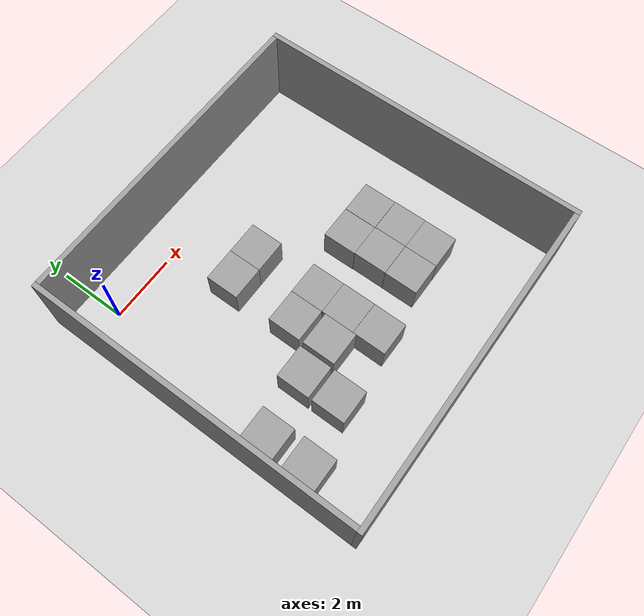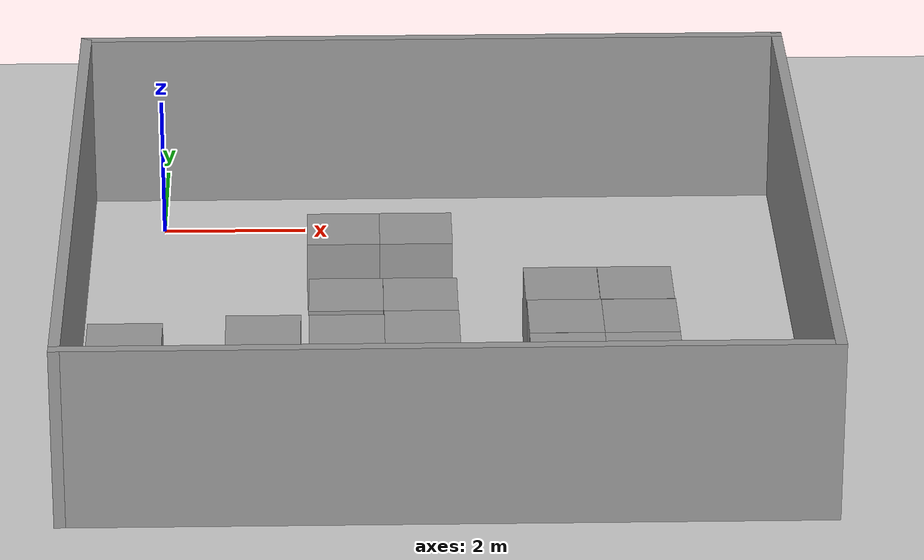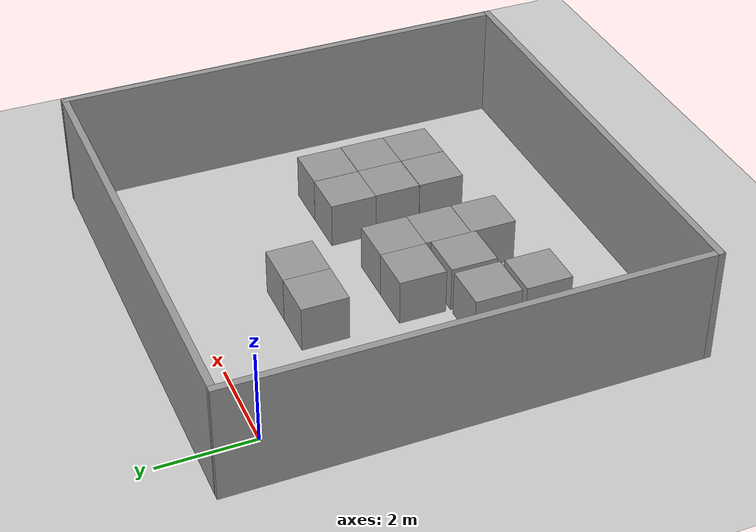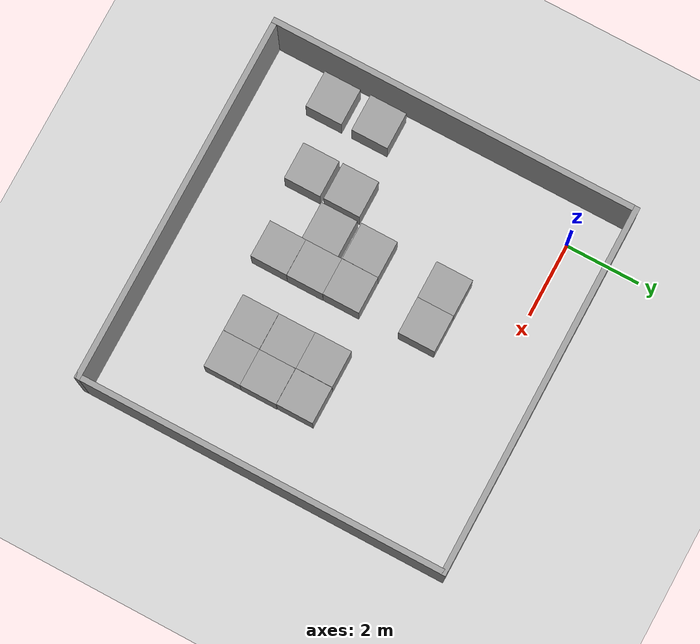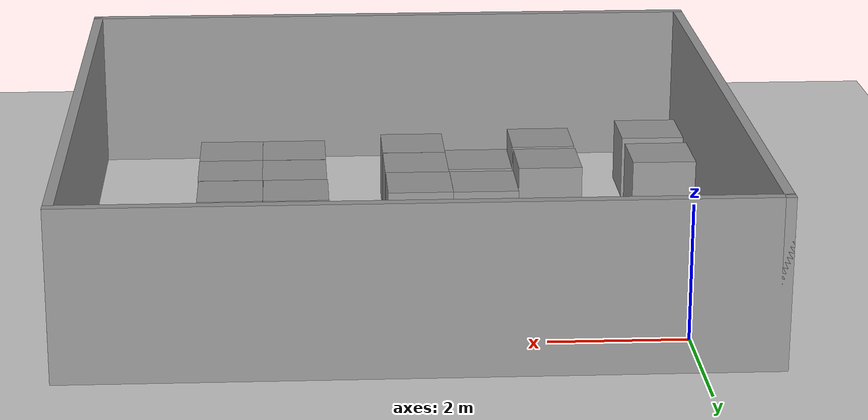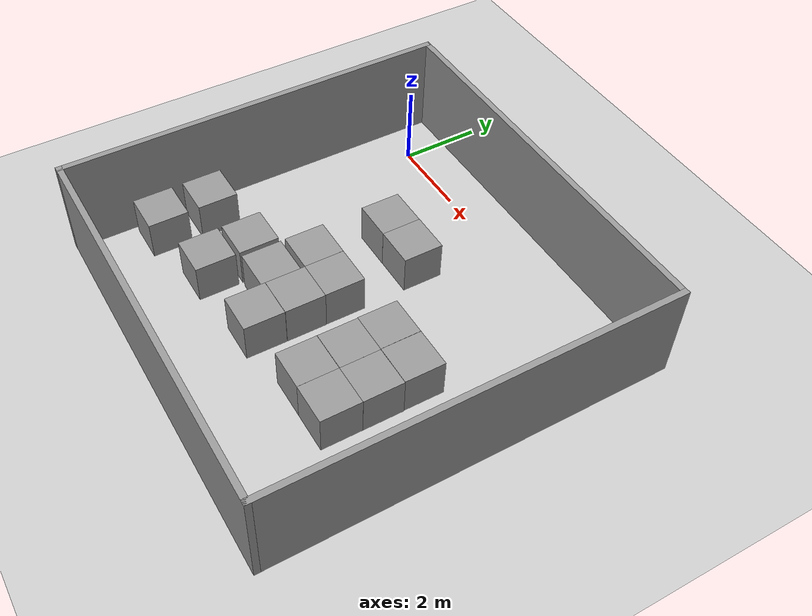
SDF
<sdf version="1.6">
 <world name="default">
  <light name="sun" type="directional">
   <pose>0 0 10 0 -0 0</pose>
   <diffuse>0.8 0.8 0.8 1</diffuse>
   <specular>0.2 0.2 0.2 1</specular>
   <attenuation>
    <range>1000</range>
    <constant>0.9</constant>
    <linear>0.01</linear>
    <quadratic>0.001</quadratic>
   </attenuation>
   <direction>-0.5 0.1 -0.9</direction>
  </light>
  <model name="ground_plane">
   <static>1</static>
   <link name="link">
    <collision name="collision">
     <geometry><plane><normal>0 0 1</normal><size>100 100</size></plane></geometry>
     <surface><friction><ode><mu>100</mu><mu2>50</mu2></ode></friction></surface>
    </collision>
    <visual name="visual">
     <cast_shadows>0</cast_shadows>
     <geometry><plane><normal>0 0 1</normal><size>100 100</size></plane></geometry>
     <material>
      <script><uri>file://media/materials/scripts/gazebo.material</uri><name>Gazebo/Grey</name></script>
     </material>
    </visual>
   </link>
  </model>
  <gravity>0 0 -9.8</gravity>
  <magnetic_field>6e-06 2.3e-05 -4.2e-05</magnetic_field>
  <atmosphere type="adiabatic"/>
  <physics name="default_physics" default="0" type="ode">
   <max_step_size>0.001</max_step_size>
   <real_time_factor>1</real_time_factor>
   <real_time_update_rate>1000</real_time_update_rate>
  </physics>
  <scene><ambient>0.4 0.4 0.4 1</ambient><background>0.7 0.7 0.7 1</background><shadows>1</shadows></scene>
  <audio><device>default</device></audio>
  <spherical_coordinates>
   <surface_model>EARTH_WGS84</surface_model>
   <latitude_deg>0</latitude_deg>
   <longitude_deg>0</longitude_deg>
   <elevation>0</elevation>
   <heading_deg>0</heading_deg>
  </spherical_coordinates>
  <model name="Untitled">
   <pose>3.83215 -3.80138 0 0 -0 0</pose>
   <link name="Wall_0">
    <collision name="Wall_0_Collision">
     <geometry><box><size>10 0.15 2.5</size></box></geometry>
     <pose>0 0 1.25 0 -0 0</pose>
    </collision>
    <visual name="Wall_0_Visual">
     <pose>0 0 1.25 0 -0 0</pose>
     <geometry><box><size>10 0.15 2.5</size></box></geometry>
     <material>
      <script><uri>file://media/materials/scripts/gazebo.material</uri><name>Gazebo/Grey</name></script>
      <ambient>1 1 1 1</ambient>
     </material>
     <meta><layer>0</layer></meta>
    </visual>
    <pose>-4.925 0 0 0 -0 1.5708</pose>
   </link>
   <link name="Wall_1">
    <collision name="Wall_1_Collision">
     <geometry><box><size>10 0.15 2.5</size></box></geometry>
     <pose>0 0 1.25 0 -0 0</pose>
    </collision>
    <visual name="Wall_1_Visual">
     <pose>0 0 1.25 0 -0 0</pose>
     <geometry><box><size>10 0.15 2.5</size></box></geometry>
     <material>
      <script><uri>file://media/materials/scripts/gazebo.material</uri><name>Gazebo/Grey</name></script>
      <ambient>1 1 1 1</ambient>
     </material>
     <meta><layer>0</layer></meta>
    </visual>
    <pose>0 4.925 0 0 -0 0</pose>
   </link>
   <link name="Wall_2">
    <collision name="Wall_2_Collision">
     <geometry><box><size>10 0.15 2.5</size></box></geometry>
     <pose>0 0 1.25 0 -0 0</pose>
    </collision>
    <visual name="Wall_2_Visual">
     <pose>0 0 1.25 0 -0 0</pose>
     <geometry><box><size>10 0.15 2.5</size></box></geometry>
     <material>
      <script><uri>file://media/materials/scripts/gazebo.material</uri><name>Gazebo/Grey</name></script>
      <ambient>1 1 1 1</ambient>
     </material>
     <meta><layer>0</layer></meta>
    </visual>
    <pose>4.925 0 0 0 -0 -1.5708</pose>
   </link>
   <link name="Wall_3">
    <collision name="Wall_3_Collision">
     <geometry><box><size>10 0.15 2.5</size></box></geometry>
     <pose>0 0 1.25 0 -0 0</pose>
    </collision>
    <visual name="Wall_3_Visual">
     <pose>0 0 1.25 0 -0 0</pose>
     <geometry><box><size>10 0.15 2.5</size></box></geometry>
     <material>
      <script><uri>file://media/materials/scripts/gazebo.material</uri><name>Gazebo/Grey</name></script>
      <ambient>1 1 1 1</ambient>
     </material>
     <meta><layer>0</layer></meta>
    </visual>
    <pose>0 -4.925 0 0 -0 3.14159</pose>
   </link>
   <static>1</static>
  </model>
  <model name="unit_box">
   <pose>5.47967 -3.88127 0.5 0 -0 0.000777</pose>
   <link name="link">
    <inertial>
     <mass>1</mass>
     <inertia>
      <ixx>0.166667</ixx>
      <ixy>0</ixy>
      <ixz>0</ixz>
      <iyy>0.166667</iyy>
      <iyz>0</iyz>
      <izz>0.166667</izz>
     </inertia>
    </inertial>
    <collision name="collision"><geometry><box><size>1 1 1</size></box></geometry></collision>
    <visual name="visual">
     <geometry><box><size>1 1 1</size></box></geometry>
     <material>
      <script><name>Gazebo/Grey</name><uri>file://media/materials/scripts/gazebo.material</uri></script>
     </material>
    </visual>
   </link>
  </model>
  <model name="unit_box_0">
   <pose>6.48285 -3.88193 0.5 -0 -0 -0.002214</pose>
   <link name="link">
    <inertial>
     <mass>1</mass>
     <inertia>
      <ixx>0.166667</ixx>
      <ixy>0</ixy>
      <ixz>0</ixz>
      <iyy>0.166667</iyy>
      <iyz>0</iyz>
      <izz>0.166667</izz>
     </inertia>
    </inertial>
    <collision name="collision"><geometry><box><size>1 1 1</size></box></geometry></collision>
    <visual name="visual">
     <geometry><box><size>1 1 1</size></box></geometry>
     <material>
      <script><name>Gazebo/Grey</name><uri>file://media/materials/scripts/gazebo.material</uri></script>
     </material>
    </visual>
   </link>
  </model>
  <model name="unit_box_1">
   <pose>2.56854 -4.17054 0.5 0 -0 -0.002646</pose>
   <link name="link">
    <inertial>
     <mass>1</mass>
     <inertia>
      <ixx>0.166667</ixx>
      <ixy>0</ixy>
      <ixz>0</ixz>
      <iyy>0.166667</iyy>
      <iyz>0</iyz>
      <izz>0.166667</izz>
     </inertia>
    </inertial>
    <collision name="collision"><geometry><box><size>1 1 1</size></box></geometry></collision>
    <visual name="visual">
     <geometry><box><size>1 1 1</size></box></geometry>
     <material>
      <script><name>Gazebo/Grey</name><uri>file://media/materials/scripts/gazebo.material</uri></script>
     </material>
    </visual>
   </link>
  </model>
  <model name="unit_box_2">
   <pose>3.56954 -4.17319 0.5 0 0 -0.001163</pose>
   <link name="link">
    <inertial>
     <mass>1</mass>
     <inertia>
      <ixx>0.166667</ixx>
      <ixy>0</ixy>
      <ixz>0</ixz>
      <iyy>0.166667</iyy>
      <iyz>0</iyz>
      <izz>0.166667</izz>
     </inertia>
    </inertial>
    <collision name="collision"><geometry><box><size>1 1 1</size></box></geometry></collision>
    <visual name="visual">
     <geometry><box><size>1 1 1</size></box></geometry>
     <material>
      <script><name>Gazebo/Grey</name><uri>file://media/materials/scripts/gazebo.material</uri></script>
     </material>
    </visual>
   </link>
  </model>
  <model name="unit_box_3">
   <pose>3.53973 -2.09662 0.499995 0 1e-05 3e-05</pose>
   <link name="link">
    <inertial>
     <mass>1</mass>
     <inertia>
      <ixx>0.166667</ixx>
      <ixy>0</ixy>
      <ixz>0</ixz>
      <iyy>0.166667</iyy>
      <iyz>0</iyz>
      <izz>0.166667</izz>
     </inertia>
    </inertial>
    <collision name="collision"><geometry><box><size>1 1 1</size></box></geometry></collision>
    <visual name="visual">
     <geometry><box><size>1 1 1</size></box></geometry>
     <material>
      <script><name>Gazebo/Grey</name><uri>file://media/materials/scripts/gazebo.material</uri></script>
     </material>
    </visual>
   </link>
  </model>
  <model name="unit_box_4">
   <pose>2.53973 -2.09787 0.5 0 -0 3e-05</pose>
   <link name="link">
    <inertial>
     <mass>1</mass>
     <inertia>
      <ixx>0.166667</ixx>
      <ixy>0</ixy>
      <ixz>0</ixz>
      <iyy>0.166667</iyy>
      <iyz>0</iyz>
      <izz>0.166667</izz>
     </inertia>
    </inertial>
    <collision name="collision"><geometry><box><size>1 1 1</size></box></geometry></collision>
    <visual name="visual">
     <geometry><box><size>1 1 1</size></box></geometry>
     <material>
      <script><name>Gazebo/Grey</name><uri>file://media/materials/scripts/gazebo.material</uri></script>
     </material>
    </visual>
   </link>
  </model>
  <model name="unit_box_5">
   <pose>3.57504 -5.17322 0.5 0 0 -0.001166</pose>
   <link name="link">
    <inertial>
     <mass>1</mass>
     <inertia>
      <ixx>0.166667</ixx>
      <ixy>0</ixy>
      <ixz>0</ixz>
      <iyy>0.166667</iyy>
      <iyz>0</iyz>
      <izz>0.166667</izz>
     </inertia>
    </inertial>
    <collision name="collision"><geometry><box><size>1 1 1</size></box></geometry></collision>
    <visual name="visual">
     <geometry><box><size>1 1 1</size></box></geometry>
     <material>
      <script><name>Gazebo/Grey</name><uri>file://media/materials/scripts/gazebo.material</uri></script>
     </material>
    </visual>
   </link>
  </model>
  <model name="unit_box_6">
   <pose>3.57232 -6.17514 0.5 0 0 -0.004958</pose>
   <link name="link">
    <inertial>
     <mass>1</mass>
     <inertia>
      <ixx>0.166667</ixx>
      <ixy>0</ixy>
      <ixz>0</ixz>
      <iyy>0.166667</iyy>
      <iyz>0</iyz>
      <izz>0.166667</izz>
     </inertia>
    </inertial>
    <collision name="collision"><geometry><box><size>1 1 1</size></box></geometry></collision>
    <visual name="visual">
     <geometry><box><size>1 1 1</size></box></geometry>
     <material>
      <script><name>Gazebo/Grey</name><uri>file://media/materials/scripts/gazebo.material</uri></script>
     </material>
    </visual>
   </link>
  </model>
  <model name="unit_box_7">
   <pose>5.49307 -4.88131 0.499995 -0 1e-05 0.000671</pose>
   <link name="link">
    <inertial>
     <mass>1</mass>
     <inertia>
      <ixx>0.166667</ixx>
      <ixy>0</ixy>
      <ixz>0</ixz>
      <iyy>0.166667</iyy>
      <iyz>0</iyz>
      <izz>0.166667</izz>
     </inertia>
    </inertial>
    <collision name="collision"><geometry><box><size>1 1 1</size></box></geometry></collision>
    <visual name="visual">
     <geometry><box><size>1 1 1</size></box></geometry>
     <material>
      <script><name>Gazebo/Grey</name><uri>file://media/materials/scripts/gazebo.material</uri></script>
     </material>
    </visual>
   </link>
  </model>
  <model name="unit_box_8">
   <pose>5.49189 -5.88499 0.5 -0 -0 -8.7e-05</pose>
   <link name="link">
    <inertial>
     <mass>1</mass>
     <inertia>
      <ixx>0.166667</ixx>
      <ixy>0</ixy>
      <ixz>0</ixz>
      <iyy>0.166667</iyy>
      <iyz>0</iyz>
      <izz>0.166667</izz>
     </inertia>
    </inertial>
    <collision name="collision"><geometry><box><size>1 1 1</size></box></geometry></collision>
    <visual name="visual">
     <geometry><box><size>1 1 1</size></box></geometry>
     <material>
      <script><name>Gazebo/Grey</name><uri>file://media/materials/scripts/gazebo.material</uri></script>
     </material>
    </visual>
   </link>
  </model>
  <model name="unit_box_9">
   <pose>-0.371306 -5.48698 0.5 0 0 -5e-06</pose>
   <link name="link">
    <inertial>
     <mass>1</mass>
     <inertia>
      <ixx>0.166667</ixx>
      <ixy>0</ixy>
      <ixz>0</ixz>
      <iyy>0.166667</iyy>
      <iyz>0</iyz>
      <izz>0.166667</izz>
     </inertia>
    </inertial>
    <collision name="collision"><geometry><box><size>1 1 1</size></box></geometry></collision>
    <visual name="visual">
     <geometry><box><size>1 1 1</size></box></geometry>
     <material>
      <script><name>Gazebo/Grey</name><uri>file://media/materials/scripts/gazebo.material</uri></script>
     </material>
    </visual>
   </link>
  </model>
  <model name="unit_box_10">
   <pose>-0.36552 -6.7676 0.5 0 -0 0</pose>
   <link name="link">
    <inertial>
     <mass>1</mass>
     <inertia>
      <ixx>0.166667</ixx>
      <ixy>0</ixy>
      <ixz>0</ixz>
      <iyy>0.166667</iyy>
      <iyz>0</iyz>
      <izz>0.166667</izz>
     </inertia>
    </inertial>
    <collision name="collision"><geometry><box><size>1 1 1</size></box></geometry></collision>
    <visual name="visual">
     <geometry><box><size>1 1 1</size></box></geometry>
     <material>
      <script><name>Gazebo/Grey</name><uri>file://media/materials/scripts/gazebo.material</uri></script>
     </material>
    </visual>
   </link>
  </model>
  <model name="unit_box_11">
   <pose>1.46477 -5.27959 0.5 0 -0 0</pose>
   <link name="link">
    <inertial>
     <mass>1</mass>
     <inertia>
      <ixx>0.166667</ixx>
      <ixy>0</ixy>
      <ixz>0</ixz>
      <iyy>0.166667</iyy>
      <iyz>0</iyz>
      <izz>0.166667</izz>
     </inertia>
    </inertial>
    <collision name="collision"><geometry><box><size>1 1 1</size></box></geometry></collision>
    <visual name="visual">
     <geometry><box><size>1 1 1</size></box></geometry>
     <material>
      <script><name>Gazebo/Grey</name><uri>file://media/materials/scripts/gazebo.material</uri></script>
     </material>
    </visual>
   </link>
  </model>
  <model name="unit_box_12">
   <pose>1.46901 -6.37828 0.5 0 -0 0</pose>
   <link name="link">
    <inertial>
     <mass>1</mass>
     <inertia>
      <ixx>0.166667</ixx>
      <ixy>0</ixy>
      <ixz>0</ixz>
      <iyy>0.166667</iyy>
      <iyz>0</iyz>
      <izz>0.166667</izz>
     </inertia>
    </inertial>
    <collision name="collision"><geometry><box><size>1 1 1</size></box></geometry></collision>
    <visual name="visual">
     <geometry><box><size>1 1 1</size></box></geometry>
     <material>
      <script><name>Gazebo/Grey</name><uri>file://media/materials/scripts/gazebo.material</uri></script>
     </material>
    </visual>
   </link>
  </model>
  <model name="unit_box_13">
   <pose>2.57482 -5.28071 0.5 0 0 -0.001114</pose>
   <link name="link">
    <inertial>
     <mass>1</mass>
     <inertia>
      <ixx>0.166667</ixx>
      <ixy>0</ixy>
      <ixz>0</ixz>
      <iyy>0.166667</iyy>
      <iyz>0</iyz>
      <izz>0.166667</izz>
     </inertia>
    </inertial>
    <collision name="collision"><geometry><box><size>1 1 1</size></box></geometry></collision>
    <visual name="visual">
     <geometry><box><size>1 1 1</size></box></geometry>
     <material>
      <script><name>Gazebo/Grey</name><uri>file://media/materials/scripts/gazebo.material</uri></script>
     </material>
    </visual>
   </link>
  </model>
  <model name="unit_box_14">
   <pose>6.49326 -4.88554 0.499995 -0 -1e-05 0.000283</pose>
   <link name="link">
    <inertial>
     <mass>1</mass>
     <inertia>
      <ixx>0.166667</ixx>
      <ixy>0</ixy>
      <ixz>0</ixz>
      <iyy>0.166667</iyy>
      <iyz>0</iyz>
      <izz>0.166667</izz>
     </inertia>
    </inertial>
    <collision name="collision"><geometry><box><size>1 1 1</size></box></geometry></collision>
    <visual name="visual">
     <geometry><box><size>1 1 1</size></box></geometry>
     <material>
      <script><name>Gazebo/Grey</name><uri>file://media/materials/scripts/gazebo.material</uri></script>
     </material>
    </visual>
   </link>
  </model>
  <model name="unit_box_15">
   <pose>6.49212 -5.88559 0.499995 -1e-05 0 0.000181</pose>
   <link name="link">
    <inertial>
     <mass>1</mass>
     <inertia>
      <ixx>0.166667</ixx>
      <ixy>0</ixy>
      <ixz>0</ixz>
      <iyy>0.166667</iyy>
      <iyz>0</iyz>
      <izz>0.166667</izz>
     </inertia>
    </inertial>
    <collision name="collision"><geometry><box><size>1 1 1</size></box></geometry></collision>
    <visual name="visual">
     <geometry><box><size>1 1 1</size></box></geometry>
     <material>
      <script><name>Gazebo/Grey</name><uri>file://media/materials/scripts/gazebo.material</uri></script>
     </material>
    </visual>
   </link>
  </model>
 </world>
</sdf>
